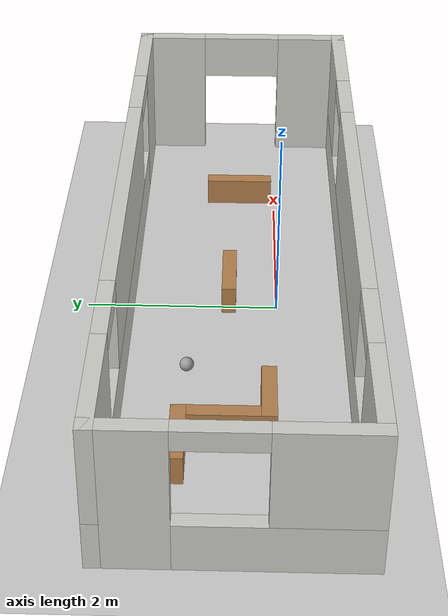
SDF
<sdf version="1.6">
 <world name="default">
  <light name="sun" type="directional">
   <pose>0 0 10 0 -0 0</pose>
   <diffuse>0.8 0.8 0.8 1</diffuse>
   <specular>0.2 0.2 0.2 1</specular>
   <attenuation>
    <range>1000</range>
    <constant>0.9</constant>
    <linear>0.01</linear>
    <quadratic>0.001</quadratic>
   </attenuation>
   <direction>-0.5 0.1 -0.9</direction>
  </light>
  <model name="ground_plane">
   <static>1</static>
   <link name="link">
    <collision name="collision">
     <geometry><plane><normal>0 0 1</normal><size>100 100</size></plane></geometry>
     <surface>
      <contact><collide_bitmask>65535</collide_bitmask></contact>
      <friction><ode><mu>100</mu><mu2>50</mu2></ode></friction>
     </surface>
    </collision>
    <visual name="visual">
     <cast_shadows>0</cast_shadows>
     <geometry><plane><normal>0 0 1</normal><size>100 100</size></plane></geometry>
     <material>
      <script><uri>file://media/materials/scripts/gazebo.material</uri><name>Gazebo/Grey</name></script>
     </material>
    </visual>
   </link>
  </model>
  <gravity>0 0 -9.8</gravity>
  <magnetic_field>6e-06 2.3e-05 -4.2e-05</magnetic_field>
  <atmosphere type="adiabatic"/>
  <physics name="default_physics" default="0" type="ode">
   <max_step_size>0.001</max_step_size>
   <real_time_factor>1</real_time_factor>
   <real_time_update_rate>1000</real_time_update_rate>
  </physics>
  <scene><ambient>0.4 0.4 0.4 1</ambient><background>0.7 0.7 0.7 1</background><shadows>1</shadows></scene>
  <audio><device>default</device></audio>
  <spherical_coordinates>
   <surface_model>EARTH_WGS84</surface_model>
   <latitude_deg>0</latitude_deg>
   <longitude_deg>0</longitude_deg>
   <elevation>0</elevation>
   <heading_deg>0</heading_deg>
  </spherical_coordinates>
  <model name="robot_world2">
   <pose>-0.011397 0.411549 0 0 -0 0</pose>
   <link name="Wall_0">
    <pose>-3.675 0 0 0 -0 -1.5708</pose>
    <visual name="Wall_0_Visual_0">
     <pose>-0.8825 0 0.75 0 -0 0</pose>
     <geometry><box><size>0.735 0.15 1.5</size></box></geometry>
     <material>
      <script><uri>file://media/materials/scripts/gazebo.material</uri><name>Gazebo/CeilingTiled</name></script>
      <ambient>0 1 0 1</ambient>
     </material>
     <meta><layer>0</layer></meta>
    </visual>
    <collision name="Wall_0_Collision_0">
     <geometry><box><size>0.735 0.15 1.5</size></box></geometry>
     <pose>-0.8825 0 0.75 0 -0 0</pose>
    </collision>
    <visual name="Wall_0_Visual_1">
     <pose>0.3675 0 0.25 0 -0 0</pose>
     <geometry><box><size>1.765 0.15 0.5</size></box></geometry>
     <material>
      <script><uri>file://media/materials/scripts/gazebo.material</uri><name>Gazebo/CeilingTiled</name></script>
      <ambient>0 1 0 1</ambient>
     </material>
     <meta><layer>0</layer></meta>
    </visual>
    <collision name="Wall_0_Collision_1">
     <geometry><box><size>1.765 0.15 0.5</size></box></geometry>
     <pose>0.3675 0 0.25 0 -0 0</pose>
    </collision>
    <visual name="Wall_0_Visual_2">
     <pose>0.7675 0 1 0 -0 0</pose>
     <geometry><box><size>0.965 0.15 1</size></box></geometry>
     <material>
      <script><uri>file://media/materials/scripts/gazebo.material</uri><name>Gazebo/CeilingTiled</name></script>
      <ambient>0 1 0 1</ambient>
     </material>
     <meta><layer>0</layer></meta>
    </visual>
    <collision name="Wall_0_Collision_2">
     <geometry><box><size>0.965 0.15 1</size></box></geometry>
     <pose>0.7675 0 1 0 -0 0</pose>
    </collision>
    <visual name="Wall_0_Visual_3">
     <pose>-0.115 0 1.4 0 -0 0</pose>
     <geometry><box><size>0.8 0.15 0.2</size></box></geometry>
     <material>
      <script><uri>file://media/materials/scripts/gazebo.material</uri><name>Gazebo/CeilingTiled</name></script>
      <ambient>0 1 0 1</ambient>
     </material>
     <meta><layer>0</layer></meta>
    </visual>
    <collision name="Wall_0_Collision_3">
     <geometry><box><size>0.8 0.15 0.2</size></box></geometry>
     <pose>-0.115 0 1.4 0 -0 0</pose>
    </collision>
   </link>
   <link name="Wall_1">
    <pose>0 -1.175 0 0 -0 0</pose>
    <visual name="Wall_1_Visual_0">
     <pose>-3.1575 0 0.75 0 -0 0</pose>
     <geometry><box><size>1.185 0.15 1.5</size></box></geometry>
     <material>
      <script><uri>file://media/materials/scripts/gazebo.material</uri><name>Gazebo/CeilingTiled</name></script>
      <ambient>0 1 0 1</ambient>
     </material>
     <meta><layer>0</layer></meta>
    </visual>
    <collision name="Wall_1_Collision_0">
     <geometry><box><size>1.185 0.15 1.5</size></box></geometry>
     <pose>-3.1575 0 0.75 0 -0 0</pose>
    </collision>
    <visual name="Wall_1_Visual_1">
     <pose>0.5925 0 0.25 0 -0 0</pose>
     <geometry><box><size>6.315 0.15 0.5</size></box></geometry>
     <material>
      <script><uri>file://media/materials/scripts/gazebo.material</uri><name>Gazebo/CeilingTiled</name></script>
      <ambient>0 1 0 1</ambient>
     </material>
     <meta><layer>0</layer></meta>
    </visual>
    <collision name="Wall_1_Collision_1">
     <geometry><box><size>6.315 0.15 0.5</size></box></geometry>
     <pose>0.5925 0 0.25 0 -0 0</pose>
    </collision>
    <visual name="Wall_1_Visual_2">
     <pose>-0.05 0 1 0 -0 0</pose>
     <geometry><box><size>3.43 0.15 1</size></box></geometry>
     <material>
      <script><uri>file://media/materials/scripts/gazebo.material</uri><name>Gazebo/CeilingTiled</name></script>
      <ambient>0 1 0 1</ambient>
     </material>
     <meta><layer>0</layer></meta>
    </visual>
    <collision name="Wall_1_Collision_2">
     <geometry><box><size>3.43 0.15 1</size></box></geometry>
     <pose>-0.05 0 1 0 -0 0</pose>
    </collision>
    <visual name="Wall_1_Visual_3">
     <pose>3.1075 0 1 0 -0 0</pose>
     <geometry><box><size>1.285 0.15 1</size></box></geometry>
     <material>
      <script><uri>file://media/materials/scripts/gazebo.material</uri><name>Gazebo/CeilingTiled</name></script>
      <ambient>0 1 0 1</ambient>
     </material>
     <meta><layer>0</layer></meta>
    </visual>
    <collision name="Wall_1_Collision_3">
     <geometry><box><size>1.285 0.15 1</size></box></geometry>
     <pose>3.1075 0 1 0 -0 0</pose>
    </collision>
    <visual name="Wall_1_Visual_4">
     <pose>-2.165 0 1.4 0 -0 0</pose>
     <geometry><box><size>0.8 0.15 0.2</size></box></geometry>
     <material>
      <script><uri>file://media/materials/scripts/gazebo.material</uri><name>Gazebo/CeilingTiled</name></script>
      <ambient>0 1 0 1</ambient>
     </material>
     <meta><layer>0</layer></meta>
    </visual>
    <collision name="Wall_1_Collision_4">
     <geometry><box><size>0.8 0.15 0.2</size></box></geometry>
     <pose>-2.165 0 1.4 0 -0 0</pose>
    </collision>
    <visual name="Wall_1_Visual_5">
     <pose>2.065 0 1.4 0 -0 0</pose>
     <geometry><box><size>0.8 0.15 0.2</size></box></geometry>
     <material>
      <script><uri>file://media/materials/scripts/gazebo.material</uri><name>Gazebo/CeilingTiled</name></script>
      <ambient>0 1 0 1</ambient>
     </material>
     <meta><layer>0</layer></meta>
    </visual>
    <collision name="Wall_1_Collision_5">
     <geometry><box><size>0.8 0.15 0.2</size></box></geometry>
     <pose>2.065 0 1.4 0 -0 0</pose>
    </collision>
   </link>
   <link name="Wall_11">
    <collision name="Wall_11_Collision">
     <geometry><box><size>0.75 0.15 0.3</size></box></geometry>
     <pose>0 0 0.15 0 -0 0</pose>
    </collision>
    <visual name="Wall_11_Visual">
     <pose>0 0 0.15 0 -0 0</pose>
     <geometry><box><size>0.75 0.15 0.3</size></box></geometry>
     <material>
      <script><uri>file://media/materials/scripts/gazebo.material</uri><name>Gazebo/Wood</name></script>
      <ambient>1 1 1 1</ambient>
     </material>
     <meta><layer>0</layer></meta>
    </visual>
    <pose>2.255 0.005 0 0 -0 -1.5708</pose>
   </link>
   <link name="Wall_2">
    <pose>3.675 0 0 0 -0 1.5708</pose>
    <visual name="Wall_2_Visual_0">
     <pose>-0.8475 0 0.75 0 -0 0</pose>
     <geometry><box><size>0.805 0.15 1.5</size></box></geometry>
     <material>
      <script><uri>file://media/materials/scripts/gazebo.material</uri><name>Gazebo/CeilingTiled</name></script>
      <ambient>0 1 0 1</ambient>
     </material>
     <meta><layer>0</layer></meta>
    </visual>
    <collision name="Wall_2_Collision_0">
     <geometry><box><size>0.805 0.15 1.5</size></box></geometry>
     <pose>-0.8475 0 0.75 0 -0 0</pose>
    </collision>
    <visual name="Wall_2_Visual_1">
     <pose>0.8525 0 0.75 0 -0 0</pose>
     <geometry><box><size>0.795 0.15 1.5</size></box></geometry>
     <material>
      <script><uri>file://media/materials/scripts/gazebo.material</uri><name>Gazebo/CeilingTiled</name></script>
      <ambient>0 1 0 1</ambient>
     </material>
     <meta><layer>0</layer></meta>
    </visual>
    <collision name="Wall_2_Collision_1">
     <geometry><box><size>0.795 0.15 1.5</size></box></geometry>
     <pose>0.8525 0 0.75 0 -0 0</pose>
    </collision>
    <visual name="Wall_2_Visual_2">
     <pose>0.005 0 1.25 0 -0 0</pose>
     <geometry><box><size>0.9 0.15 0.5</size></box></geometry>
     <material>
      <script><uri>file://media/materials/scripts/gazebo.material</uri><name>Gazebo/CeilingTiled</name></script>
      <ambient>0 1 0 1</ambient>
     </material>
     <meta><layer>0</layer></meta>
    </visual>
    <collision name="Wall_2_Collision_2">
     <geometry><box><size>0.9 0.15 0.5</size></box></geometry>
     <pose>0.005 0 1.25 0 -0 0</pose>
    </collision>
   </link>
   <link name="Wall_3">
    <pose>0 1.175 0 0 -0 3.14159</pose>
    <visual name="Wall_3_Visual_0">
     <pose>-3.1375 0 0.75 0 -0 0</pose>
     <geometry><box><size>1.225 0.15 1.5</size></box></geometry>
     <material>
      <script><uri>file://media/materials/scripts/gazebo.material</uri><name>Gazebo/CeilingTiled</name></script>
      <ambient>0 1 0 1</ambient>
     </material>
     <meta><layer>0</layer></meta>
    </visual>
    <collision name="Wall_3_Collision_0">
     <geometry><box><size>1.225 0.15 1.5</size></box></geometry>
     <pose>-3.1375 0 0.75 0 -0 0</pose>
    </collision>
    <visual name="Wall_3_Visual_1">
     <pose>0.6125 0 0.25 0 -0 0</pose>
     <geometry><box><size>6.275 0.15 0.5</size></box></geometry>
     <material>
      <script><uri>file://media/materials/scripts/gazebo.material</uri><name>Gazebo/CeilingTiled</name></script>
      <ambient>0 1 0 1</ambient>
     </material>
     <meta><layer>0</layer></meta>
    </visual>
    <collision name="Wall_3_Collision_1">
     <geometry><box><size>6.275 0.15 0.5</size></box></geometry>
     <pose>0.6125 0 0.25 0 -0 0</pose>
    </collision>
    <visual name="Wall_3_Visual_2">
     <pose>-0.01 0 1 0 -0 0</pose>
     <geometry><box><size>3.43 0.15 1</size></box></geometry>
     <material>
      <script><uri>file://media/materials/scripts/gazebo.material</uri><name>Gazebo/CeilingTiled</name></script>
      <ambient>0 1 0 1</ambient>
     </material>
     <meta><layer>0</layer></meta>
    </visual>
    <collision name="Wall_3_Collision_2">
     <geometry><box><size>3.43 0.15 1</size></box></geometry>
     <pose>-0.01 0 1 0 -0 0</pose>
    </collision>
    <visual name="Wall_3_Visual_3">
     <pose>3.1275 0 1 0 -0 0</pose>
     <geometry><box><size>1.245 0.15 1</size></box></geometry>
     <material>
      <script><uri>file://media/materials/scripts/gazebo.material</uri><name>Gazebo/CeilingTiled</name></script>
      <ambient>0 1 0 1</ambient>
     </material>
     <meta><layer>0</layer></meta>
    </visual>
    <collision name="Wall_3_Collision_3">
     <geometry><box><size>1.245 0.15 1</size></box></geometry>
     <pose>3.1275 0 1 0 -0 0</pose>
    </collision>
    <visual name="Wall_3_Visual_4">
     <pose>-2.125 0 1.4 0 -0 0</pose>
     <geometry><box><size>0.8 0.15 0.2</size></box></geometry>
     <material>
      <script><uri>file://media/materials/scripts/gazebo.material</uri><name>Gazebo/CeilingTiled</name></script>
      <ambient>0 1 0 1</ambient>
     </material>
     <meta><layer>0</layer></meta>
    </visual>
    <collision name="Wall_3_Collision_4">
     <geometry><box><size>0.8 0.15 0.2</size></box></geometry>
     <pose>-2.125 0 1.4 0 -0 0</pose>
    </collision>
    <visual name="Wall_3_Visual_5">
     <pose>2.105 0 1.4 0 -0 0</pose>
     <geometry><box><size>0.8 0.15 0.2</size></box></geometry>
     <material>
      <script><uri>file://media/materials/scripts/gazebo.material</uri><name>Gazebo/CeilingTiled</name></script>
      <ambient>0 1 0 1</ambient>
     </material>
     <meta><layer>0</layer></meta>
    </visual>
    <collision name="Wall_3_Collision_5">
     <geometry><box><size>0.8 0.15 0.2</size></box></geometry>
     <pose>2.105 0 1.4 0 -0 0</pose>
    </collision>
   </link>
   <link name="Wall_5">
    <collision name="Wall_5_Collision">
     <geometry><box><size>0.75 0.15 0.3</size></box></geometry>
     <pose>0 0 0.15 0 -0 0</pose>
    </collision>
    <visual name="Wall_5_Visual">
     <pose>0 0 0.15 0 -0 0</pose>
     <geometry><box><size>0.75 0.15 0.3</size></box></geometry>
     <material>
      <script><uri>file://media/materials/scripts/gazebo.material</uri><name>Gazebo/Wood</name></script>
      <ambient>1 1 1 1</ambient>
     </material>
     <meta><layer>0</layer></meta>
    </visual>
    <pose>-2.345 0.535 0 0 -0 0</pose>
   </link>
   <link name="Wall_6">
    <collision name="Wall_6_Collision">
     <geometry><box><size>1 0.15 0.3</size></box></geometry>
     <pose>0 0 0.15 0 -0 0</pose>
    </collision>
    <visual name="Wall_6_Visual">
     <pose>0 0 0.15 0 -0 0</pose>
     <geometry><box><size>1 0.15 0.3</size></box></geometry>
     <material>
      <script><uri>file://media/materials/scripts/gazebo.material</uri><name>Gazebo/Wood</name></script>
      <ambient>1 1 1 1</ambient>
     </material>
     <meta><layer>0</layer></meta>
    </visual>
    <pose>-2.045 0.11 0 0 -0 -1.5708</pose>
   </link>
   <link name="Wall_7">
    <collision name="Wall_7_Collision">
     <geometry><box><size>0.75 0.15 0.3</size></box></geometry>
     <pose>0 0 0.15 0 -0 0</pose>
    </collision>
    <visual name="Wall_7_Visual">
     <pose>0 0 0.15 0 -0 0</pose>
     <geometry><box><size>0.75 0.15 0.3</size></box></geometry>
     <material>
      <script><uri>file://media/materials/scripts/gazebo.material</uri><name>Gazebo/Wood</name></script>
      <ambient>1 1 1 1</ambient>
     </material>
     <meta><layer>0</layer></meta>
    </visual>
    <pose>-1.745 -0.315 0 0 -0 0</pose>
   </link>
   <link name="Wall_9">
    <collision name="Wall_9_Collision">
     <geometry><box><size>0.75 0.15 0.3</size></box></geometry>
     <pose>0 0 0.15 0 -0 0</pose>
    </collision>
    <visual name="Wall_9_Visual">
     <pose>0 0 0.15 0 -0 0</pose>
     <geometry><box><size>0.75 0.15 0.3</size></box></geometry>
     <material>
      <script><uri>file://media/materials/scripts/gazebo.material</uri><name>Gazebo/Wood</name></script>
      <ambient>1 1 1 1</ambient>
     </material>
     <meta><layer>0</layer></meta>
    </visual>
    <pose>0.295 0.095 0 0 -0 0</pose>
   </link>
   <static>1</static>
  </model>
  <model name="unit_sphere">
   <pose>-1.08155 0.907946 0.071373 0 -0 0</pose>
   <link name="link">
    <inertial>
     <mass>1</mass>
     <inertia><ixx>0.1</ixx><ixy>0</ixy><ixz>0</ixz><iyy>0.1</iyy><iyz>0</iyz><izz>0.1</izz></inertia>
    </inertial>
    <collision name="collision"><geometry><sphere><radius>0.071373</radius></sphere></geometry></collision>
    <visual name="visual">
     <geometry><sphere><radius>0.071373</radius></sphere></geometry>
     <material>
      <script><name>Gazebo/Grey</name><uri>file://media/materials/scripts/gazebo.material</uri></script>
     </material>
    </visual>
   </link>
  </model>
  <light name="user_point_light_0" type="point">
   <pose>-0.305404 0.008249 1 0 -0 0</pose>
   <diffuse>0.5 0.5 0.5 1</diffuse>
   <specular>0.1 0.1 0.1 1</specular>
   <attenuation>
    <range>20</range>
    <constant>0.5</constant>
    <linear>0.01</linear>
    <quadratic>0.001</quadratic>
   </attenuation>
   <cast_shadows>0</cast_shadows>
   <direction>0 0 -1</direction>
  </light>
 </world>
</sdf>
